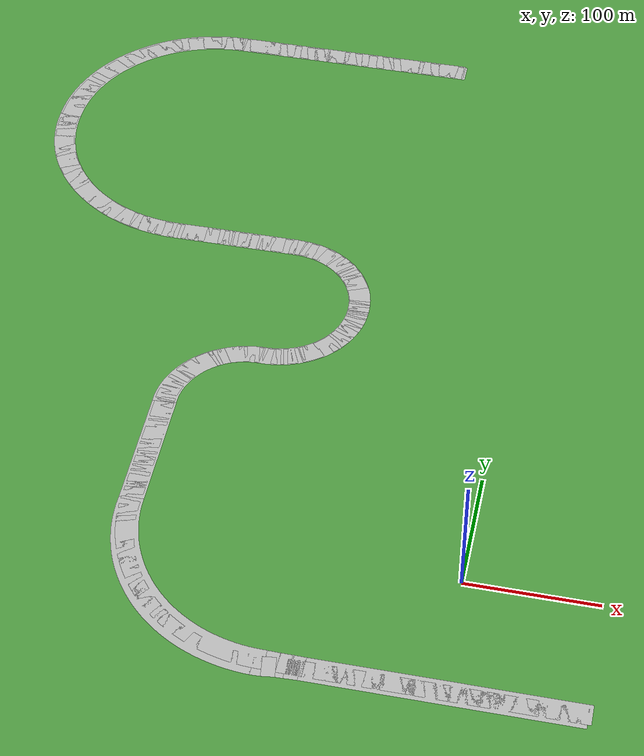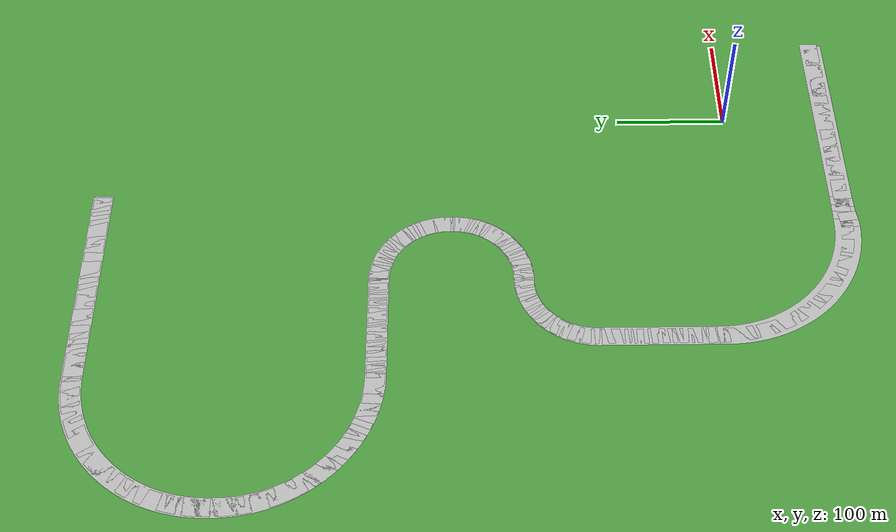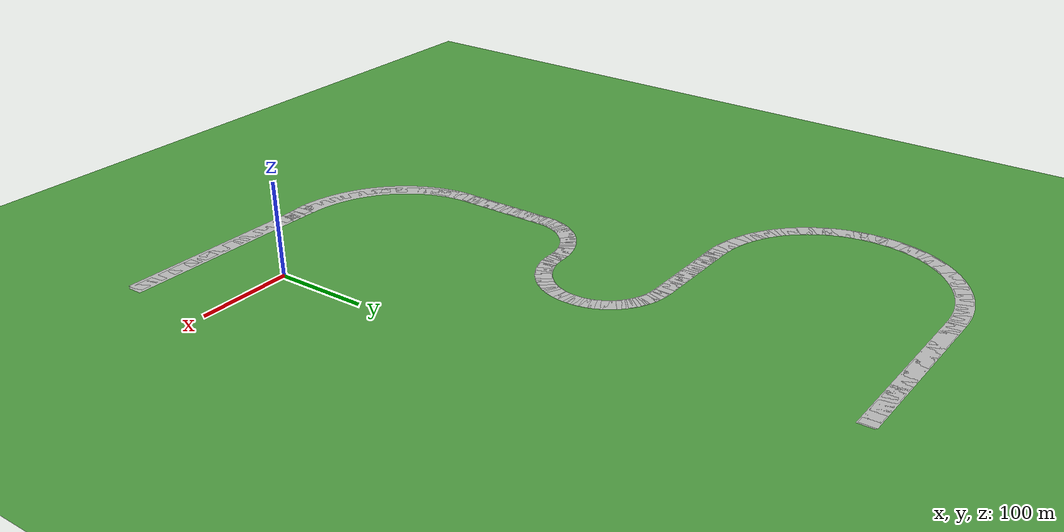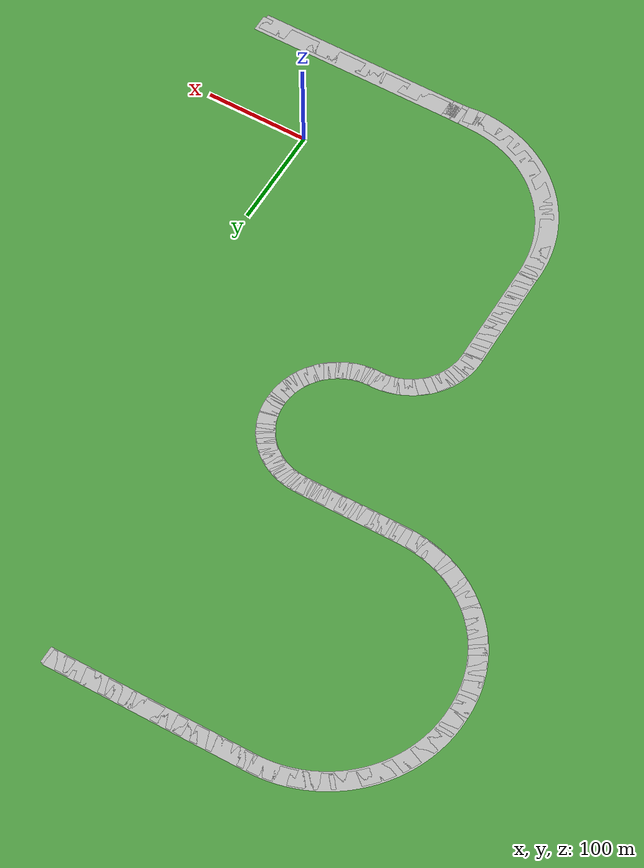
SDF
<sdf version="1.6">
 <world name="default">
  <model name="ground_plane">
   <pose>0 0 0 0 -0 3.14</pose>
   <static>1</static>
   <link name="link">
    <collision name="collision">
     <geometry><plane><normal>0 0 1</normal><size>100 100</size></plane></geometry>
     <surface><friction><ode><mu>100</mu><mu2>50</mu2></ode></friction></surface>
    </collision>
    <visual name="visual">
     <cast_shadows>0</cast_shadows>
     <geometry><plane><normal>0 0 1</normal><size>10000 10000</size></plane></geometry>
     <material>
      <script><uri>file://media/materials/scripts/ds_sim.material</uri><name>DSSim/GrassBackground</name></script>
     </material>
    </visual>
   </link>
  </model>
  <model name="straight200">
   <link name="link_0">
    <inertial>
     <mass>1</mass>
     <inertia>
      <ixx>0.166667</ixx>
      <ixy>0</ixy>
      <ixz>0</ixz>
      <iyy>0.166667</iyy>
      <iyz>0</iyz>
      <izz>0.166667</izz>
     </inertia>
    </inertial>
    <visual name="visual">
     <geometry><mesh><uri>/home/aws/Desktop/straight200.dae</uri><scale>1 1 1</scale></mesh></geometry>
    </visual>
    <collision name="collision">
     <geometry><mesh><uri>/home/aws/Desktop/straight200.dae</uri><scale>1 1 1</scale></mesh></geometry>
     <surface>
      <friction>
       <ode><mu>1</mu><mu2>1</mu2><fdir1>0 0 0</fdir1><slip1>0</slip1><slip2>0</slip2></ode>
       <torsional>
        <coefficient>1</coefficient>
        <patch_radius>0</patch_radius>
        <surface_radius>0</surface_radius>
        <use_patch_radius>1</use_patch_radius>
        <ode><slip>0</slip></ode>
       </torsional>
      </friction>
      <bounce><restitution_coefficient>0</restitution_coefficient><threshold>1e+06</threshold></bounce>
      <contact>
       <collide_without_contact>0</collide_without_contact>
       <collide_without_contact_bitmask>1</collide_without_contact_bitmask>
       <collide_bitmask>1</collide_bitmask>
       <ode>
        <soft_cfm>0</soft_cfm>
        <soft_erp>0.2</soft_erp>
        <kp>1e+13</kp>
        <kd>1</kd>
        <max_vel>0.01</max_vel>
        <min_depth>0</min_depth>
       </ode>
       <bullet>
        <split_impulse>1</split_impulse>
        <split_impulse_penetration_threshold>-0.01</split_impulse_penetration_threshold>
        <soft_cfm>0</soft_cfm>
        <soft_erp>0.2</soft_erp>
        <kp>1e+13</kp>
        <kd>1</kd>
       </bullet>
      </contact>
     </surface>
    </collision>
   </link>
   <static>1</static>
   <pose>-94.9967 -95.5714 0.05 0 -0 0</pose>
  </model>
  <model name="straight200_1">
   <link name="link_0">
    <inertial>
     <mass>1</mass>
     <inertia>
      <ixx>0.166667</ixx>
      <ixy>0</ixy>
      <ixz>0</ixz>
      <iyy>0.166667</iyy>
      <iyz>0</iyz>
      <izz>0.166667</izz>
     </inertia>
    </inertial>
    <visual name="visual">
     <geometry><mesh><uri>/home/aws/Desktop/straight200.dae</uri><scale>1 1 1</scale></mesh></geometry>
    </visual>
    <collision name="collision">
     <geometry><mesh><uri>/home/aws/Desktop/straight200.dae</uri><scale>1 1 1</scale></mesh></geometry>
     <surface>
      <friction>
       <ode><mu>1</mu><mu2>1</mu2><fdir1>0 0 0</fdir1><slip1>0</slip1><slip2>0</slip2></ode>
       <torsional>
        <coefficient>1</coefficient>
        <patch_radius>0</patch_radius>
        <surface_radius>0</surface_radius>
        <use_patch_radius>1</use_patch_radius>
        <ode><slip>0</slip></ode>
       </torsional>
      </friction>
      <bounce><restitution_coefficient>0</restitution_coefficient><threshold>1e+06</threshold></bounce>
      <contact>
       <collide_without_contact>0</collide_without_contact>
       <collide_without_contact_bitmask>1</collide_without_contact_bitmask>
       <collide_bitmask>1</collide_bitmask>
       <ode>
        <soft_cfm>0</soft_cfm>
        <soft_erp>0.2</soft_erp>
        <kp>1e+13</kp>
        <kd>1</kd>
        <max_vel>0.01</max_vel>
        <min_depth>0</min_depth>
       </ode>
       <bullet>
        <split_impulse>1</split_impulse>
        <split_impulse_penetration_threshold>-0.01</split_impulse_penetration_threshold>
        <soft_cfm>0</soft_cfm>
        <soft_erp>0.2</soft_erp>
        <kp>1e+13</kp>
        <kd>1</kd>
       </bullet>
      </contact>
     </surface>
    </collision>
   </link>
   <static>1</static>
   <pose>-88.5359 574.77 0.05 0 -0 3.14</pose>
  </model>
  <model name="curve200_L_2">
   <static>1</static>
   <link name="link">
    <inertial>
     <mass>1</mass>
     <inertia><ixx>1</ixx><iyy>1</iyy><izz>1</izz><ixy>0</ixy><ixz>0</ixz><iyz>0</iyz></inertia>
    </inertial>
    <collision name="collision">
     <geometry><mesh><uri>/home/aws/Desktop/curve200_L.dae</uri></mesh></geometry>
    </collision>
    <visual name="visual"><geometry><mesh><uri>/home/aws/Desktop/curve200_L.dae</uri></mesh></geometry></visual>
   </link>
   <pose>-288.013 576.432 0.05 0 -0 3.14</pose>
  </model>
  <model name="curve200_L_3">
   <static>1</static>
   <link name="link">
    <inertial>
     <mass>1</mass>
     <inertia><ixx>1</ixx><iyy>1</iyy><izz>1</izz><ixy>0</ixy><ixz>0</ixz><iyz>0</iyz></inertia>
    </inertial>
    <collision name="collision">
     <geometry><mesh><uri>/home/aws/Desktop/curve200_L.dae</uri></mesh></geometry>
    </collision>
    <visual name="visual"><geometry><mesh><uri>/home/aws/Desktop/curve200_L.dae</uri></mesh></geometry></visual>
   </link>
   <pose>-415.91 447.969 0.05 0 0 -1.57</pose>
  </model>
  <model name="straight100_4">
   <link name="link_0">
    <inertial>
     <mass>1</mass>
     <inertia>
      <ixx>0.166667</ixx>
      <ixy>0</ixy>
      <ixz>0</ixz>
      <iyy>0.166667</iyy>
      <iyz>0</iyz>
      <izz>0.166667</izz>
     </inertia>
    </inertial>
    <visual name="visual">
     <geometry><mesh><uri>/home/aws/Desktop/straight100.dae</uri><scale>1 1 1</scale></mesh></geometry>
    </visual>
    <collision name="collision">
     <geometry><mesh><uri>/home/aws/Desktop/straight100.dae</uri><scale>1 1 1</scale></mesh></geometry>
     <surface>
      <friction>
       <ode><mu>1</mu><mu2>1</mu2><fdir1>0 0 0</fdir1><slip1>0</slip1><slip2>0</slip2></ode>
       <torsional>
        <coefficient>1</coefficient>
        <patch_radius>0</patch_radius>
        <surface_radius>0</surface_radius>
        <use_patch_radius>1</use_patch_radius>
        <ode><slip>0</slip></ode>
       </torsional>
      </friction>
      <bounce><restitution_coefficient>0</restitution_coefficient><threshold>1e+06</threshold></bounce>
      <contact>
       <collide_without_contact>0</collide_without_contact>
       <collide_without_contact_bitmask>1</collide_without_contact_bitmask>
       <collide_bitmask>1</collide_bitmask>
       <ode>
        <soft_cfm>0</soft_cfm>
        <soft_erp>0.2</soft_erp>
        <kp>1e+13</kp>
        <kd>1</kd>
        <max_vel>0.01</max_vel>
        <min_depth>0</min_depth>
       </ode>
       <bullet>
        <split_impulse>1</split_impulse>
        <split_impulse_penetration_threshold>-0.01</split_impulse_penetration_threshold>
        <soft_cfm>0</soft_cfm>
        <soft_erp>0.2</soft_erp>
        <kp>1e+13</kp>
        <kd>1</kd>
       </bullet>
      </contact>
     </surface>
    </collision>
   </link>
   <static>1</static>
   <pose>-287.19 321.773 0.05 0 -0 0</pose>
  </model>
  <model name="curve100_R_3">
   <static>1</static>
   <link name="link">
    <inertial>
     <mass>1</mass>
     <inertia><ixx>1</ixx><iyy>1</iyy><izz>1</izz><ixy>0</ixy><ixz>0</ixz><iyz>0</iyz></inertia>
    </inertial>
    <collision name="collision">
     <geometry><mesh><uri>/home/aws/Desktop/curve100_R.dae</uri></mesh></geometry>
    </collision>
    <visual name="visual"><geometry><mesh><uri>/home/aws/Desktop/curve100_R.dae</uri></mesh></geometry></visual>
   </link>
   <pose>-187.235 321.138 0.05 0 -0 0.020116</pose>
  </model>
  <model name="curve100_R_4">
   <static>1</static>
   <link name="link">
    <inertial>
     <mass>1</mass>
     <inertia><ixx>1</ixx><iyy>1</iyy><izz>1</izz><ixy>0</ixy><ixz>0</ixz><iyz>0</iyz></inertia>
    </inertial>
    <collision name="collision">
     <geometry><mesh><uri>/home/aws/Desktop/curve100_R.dae</uri></mesh></geometry>
    </collision>
    <visual name="visual"><geometry><mesh><uri>/home/aws/Desktop/curve100_R.dae</uri></mesh></geometry></visual>
   </link>
   <pose>-124.338 258.149 0.05 0 0 -1.54825</pose>
  </model>
  <model name="curve100_L_2">
   <static>1</static>
   <link name="link">
    <inertial>
     <mass>1</mass>
     <inertia><ixx>1</ixx><iyy>1</iyy><izz>1</izz><ixy>0</ixy><ixz>0</ixz><iyz>0</iyz></inertia>
    </inertial>
    <collision name="collision">
     <geometry><mesh><uri>/home/aws/Desktop/curve100_L.dae</uri></mesh></geometry>
    </collision>
    <visual name="visual"><geometry><mesh><uri>/home/aws/Desktop/curve100_L.dae</uri></mesh></geometry></visual>
   </link>
   <pose>-186.669 195.084 0.05 0 -0 3.13696</pose>
  </model>
  <model name="straight100_6">
   <link name="link_0">
    <inertial>
     <mass>1</mass>
     <inertia>
      <ixx>0.166667</ixx>
      <ixy>0</ixy>
      <ixz>0</ixz>
      <iyy>0.166667</iyy>
      <iyz>0</iyz>
      <izz>0.166667</izz>
     </inertia>
    </inertial>
    <visual name="visual">
     <geometry><mesh><uri>/home/aws/Desktop/straight100.dae</uri><scale>1 1 1</scale></mesh></geometry>
    </visual>
    <collision name="collision">
     <geometry><mesh><uri>/home/aws/Desktop/straight100.dae</uri><scale>1 1 1</scale></mesh></geometry>
     <surface>
      <friction>
       <ode><mu>1</mu><mu2>1</mu2><fdir1>0 0 0</fdir1><slip1>0</slip1><slip2>0</slip2></ode>
       <torsional>
        <coefficient>1</coefficient>
        <patch_radius>0</patch_radius>
        <surface_radius>0</surface_radius>
        <use_patch_radius>1</use_patch_radius>
        <ode><slip>0</slip></ode>
       </torsional>
      </friction>
      <bounce><restitution_coefficient>0</restitution_coefficient><threshold>1e+06</threshold></bounce>
      <contact>
       <collide_without_contact>0</collide_without_contact>
       <collide_without_contact_bitmask>1</collide_without_contact_bitmask>
       <collide_bitmask>1</collide_bitmask>
       <ode>
        <soft_cfm>0</soft_cfm>
        <soft_erp>0.2</soft_erp>
        <kp>1e+13</kp>
        <kd>1</kd>
        <max_vel>0.01</max_vel>
        <min_depth>0</min_depth>
       </ode>
       <bullet>
        <split_impulse>1</split_impulse>
        <split_impulse_penetration_threshold>-0.01</split_impulse_penetration_threshold>
        <soft_cfm>0</soft_cfm>
        <soft_erp>0.2</soft_erp>
        <kp>1e+13</kp>
        <kd>1</kd>
       </bullet>
      </contact>
     </surface>
    </collision>
   </link>
   <static>1</static>
   <pose>-249.691 131.106 0.05 0 0 -1.57</pose>
  </model>
  <model name="curve200_L_4">
   <static>1</static>
   <link name="link">
    <inertial>
     <mass>1</mass>
     <inertia><ixx>1</ixx><iyy>1</iyy><izz>1</izz><ixy>0</ixy><ixz>0</ixz><iyz>0</iyz></inertia>
    </inertial>
    <collision name="collision">
     <geometry><mesh><uri>/home/aws/Desktop/curve200_L.dae</uri></mesh></geometry>
    </collision>
    <visual name="visual"><geometry><mesh><uri>/home/aws/Desktop/curve200_L.dae</uri></mesh></geometry></visual>
   </link>
   <pose>-250.998 31.1021 0.05 0 0 -1.57</pose>
  </model>
  <model name="connecter_10m_with_lines">
   <link name="link_1">
    <inertial>
     <mass>1</mass>
     <inertia>
      <ixx>0.166667</ixx>
      <ixy>0</ixy>
      <ixz>0</ixz>
      <iyy>0.166667</iyy>
      <iyz>0</iyz>
      <izz>0.166667</izz>
     </inertia>
    </inertial>
    <visual name="visual">
     <geometry>
      <mesh><uri>/home/aws/Desktop/connecter_10m_with_lines.dae</uri><scale>1 1 1</scale></mesh>
     </geometry>
    </visual>
    <collision name="collision">
     <geometry>
      <mesh><uri>/home/aws/Desktop/connecter_10m_with_lines.dae</uri><scale>1 1 1</scale></mesh>
     </geometry>
     <surface>
      <friction>
       <ode><mu>1</mu><mu2>1</mu2><fdir1>0 0 0</fdir1><slip1>0</slip1><slip2>0</slip2></ode>
       <torsional>
        <coefficient>1</coefficient>
        <patch_radius>0</patch_radius>
        <surface_radius>0</surface_radius>
        <use_patch_radius>1</use_patch_radius>
        <ode><slip>0</slip></ode>
       </torsional>
      </friction>
      <bounce><restitution_coefficient>0</restitution_coefficient><threshold>1e+06</threshold></bounce>
      <contact>
       <collide_without_contact>0</collide_without_contact>
       <collide_without_contact_bitmask>1</collide_without_contact_bitmask>
       <collide_bitmask>1</collide_bitmask>
       <ode>
        <soft_cfm>0</soft_cfm>
        <soft_erp>0.2</soft_erp>
        <kp>1e+13</kp>
        <kd>1</kd>
        <max_vel>0.01</max_vel>
        <min_depth>0</min_depth>
       </ode>
       <bullet>
        <split_impulse>1</split_impulse>
        <split_impulse_penetration_threshold>-0.01</split_impulse_penetration_threshold>
        <soft_cfm>0</soft_cfm>
        <soft_erp>0.2</soft_erp>
        <kp>1e+13</kp>
        <kd>1</kd>
       </bullet>
      </contact>
     </surface>
    </collision>
   </link>
   <static>1</static>
   <pose>-104.691 -95.4061 0.05 0 0 -0.020654</pose>
  </model>
  <model name="connecter_10m_with_lines_0">
   <link name="link_1">
    <inertial>
     <mass>1</mass>
     <inertia>
      <ixx>0.166667</ixx>
      <ixy>0</ixy>
      <ixz>0</ixz>
      <iyy>0.166667</iyy>
      <iyz>0</iyz>
      <izz>0.166667</izz>
     </inertia>
    </inertial>
    <visual name="visual">
     <geometry>
      <mesh><uri>/home/aws/Desktop/connecter_10m_with_lines.dae</uri><scale>1 1 1</scale></mesh>
     </geometry>
    </visual>
    <collision name="collision">
     <geometry>
      <mesh><uri>/home/aws/Desktop/connecter_10m_with_lines.dae</uri><scale>1 1 1</scale></mesh>
     </geometry>
     <surface>
      <friction>
       <ode><mu>1</mu><mu2>1</mu2><fdir1>0 0 0</fdir1><slip1>0</slip1><slip2>0</slip2></ode>
       <torsional>
        <coefficient>1</coefficient>
        <patch_radius>0</patch_radius>
        <surface_radius>0</surface_radius>
        <use_patch_radius>1</use_patch_radius>
        <ode><slip>0</slip></ode>
       </torsional>
      </friction>
      <bounce><restitution_coefficient>0</restitution_coefficient><threshold>1e+06</threshold></bounce>
      <contact>
       <collide_without_contact>0</collide_without_contact>
       <collide_without_contact_bitmask>1</collide_without_contact_bitmask>
       <collide_bitmask>1</collide_bitmask>
       <ode>
        <soft_cfm>0</soft_cfm>
        <soft_erp>0.2</soft_erp>
        <kp>1e+13</kp>
        <kd>1</kd>
        <max_vel>0.01</max_vel>
        <min_depth>0</min_depth>
       </ode>
       <bullet>
        <split_impulse>1</split_impulse>
        <split_impulse_penetration_threshold>-0.01</split_impulse_penetration_threshold>
        <soft_cfm>0</soft_cfm>
        <soft_erp>0.2</soft_erp>
        <kp>1e+13</kp>
        <kd>1</kd>
       </bullet>
      </contact>
     </surface>
    </collision>
   </link>
   <static>1</static>
   <pose>-113.247 -95.3718 0.05 0 0 -0.007108</pose>
  </model>
  <model name="connecter_10m_without_lines">
   <link name="link_0">
    <inertial>
     <mass>1</mass>
     <inertia>
      <ixx>0.166667</ixx>
      <ixy>0</ixy>
      <ixz>0</ixz>
      <iyy>0.166667</iyy>
      <iyz>0</iyz>
      <izz>0.166667</izz>
     </inertia>
    </inertial>
    <visual name="visual">
     <geometry>
      <mesh><uri>/home/aws/Desktop/connecter_10m_without_lines.dae</uri><scale>1 1 1</scale></mesh>
     </geometry>
    </visual>
    <collision name="collision">
     <geometry>
      <mesh><uri>/home/aws/Desktop/connecter_10m_without_lines.dae</uri><scale>1 1 1</scale></mesh>
     </geometry>
     <surface>
      <friction>
       <ode><mu>1</mu><mu2>1</mu2><fdir1>0 0 0</fdir1><slip1>0</slip1><slip2>0</slip2></ode>
       <torsional>
        <coefficient>1</coefficient>
        <patch_radius>0</patch_radius>
        <surface_radius>0</surface_radius>
        <use_patch_radius>1</use_patch_radius>
        <ode><slip>0</slip></ode>
       </torsional>
      </friction>
      <bounce><restitution_coefficient>0</restitution_coefficient><threshold>1e+06</threshold></bounce>
      <contact>
       <collide_without_contact>0</collide_without_contact>
       <collide_without_contact_bitmask>1</collide_without_contact_bitmask>
       <collide_bitmask>1</collide_bitmask>
       <ode>
        <soft_cfm>0</soft_cfm>
        <soft_erp>0.2</soft_erp>
        <kp>1e+13</kp>
        <kd>1</kd>
        <max_vel>0.01</max_vel>
        <min_depth>0</min_depth>
       </ode>
       <bullet>
        <split_impulse>1</split_impulse>
        <split_impulse_penetration_threshold>-0.01</split_impulse_penetration_threshold>
        <soft_cfm>0</soft_cfm>
        <soft_erp>0.2</soft_erp>
        <kp>1e+13</kp>
        <kd>1</kd>
       </bullet>
      </contact>
     </surface>
    </collision>
   </link>
   <static>1</static>
   <pose>-122.851 -95.1236 0.05 0 0 -0.030598</pose>
  </model>
  <model name="straight200_2">
   <link name="link_0">
    <inertial>
     <mass>1</mass>
     <inertia>
      <ixx>0.166667</ixx>
      <ixy>0</ixy>
      <ixz>0</ixz>
      <iyy>0.166667</iyy>
      <iyz>0</iyz>
      <izz>0.166667</izz>
     </inertia>
    </inertial>
    <visual name="visual">
     <geometry>
      <mesh>
       <uri>/home/aws/oscar/catkin_ws/src/fusion/aws_models/blender_files/straight200.dae</uri>
       <scale>1 1 1</scale>
      </mesh>
     </geometry>
    </visual>
    <collision name="collision">
     <geometry>
      <mesh>
       <uri>/home/aws/oscar/catkin_ws/src/fusion/aws_models/blender_files/straight200.dae</uri>
       <scale>1 1 1</scale>
      </mesh>
     </geometry>
     <surface>
      <friction>
       <ode><mu>1</mu><mu2>1</mu2><fdir1>0 0 0</fdir1><slip1>0</slip1><slip2>0</slip2></ode>
       <torsional>
        <coefficient>1</coefficient>
        <patch_radius>0</patch_radius>
        <surface_radius>0</surface_radius>
        <use_patch_radius>1</use_patch_radius>
        <ode><slip>0</slip></ode>
       </torsional>
      </friction>
      <bounce><restitution_coefficient>0</restitution_coefficient><threshold>1e+06</threshold></bounce>
      <contact>
       <collide_without_contact>0</collide_without_contact>
       <collide_without_contact_bitmask>1</collide_without_contact_bitmask>
       <collide_bitmask>1</collide_bitmask>
       <ode>
        <soft_cfm>0</soft_cfm>
        <soft_erp>0.2</soft_erp>
        <kp>1e+13</kp>
        <kd>1</kd>
        <max_vel>0.01</max_vel>
        <min_depth>0</min_depth>
       </ode>
       <bullet>
        <split_impulse>1</split_impulse>
        <split_impulse_penetration_threshold>-0.01</split_impulse_penetration_threshold>
        <soft_cfm>0</soft_cfm>
        <soft_erp>0.2</soft_erp>
        <kp>1e+13</kp>
        <kd>1</kd>
       </bullet>
      </contact>
     </surface>
    </collision>
   </link>
   <static>1</static>
   <pose>-97.6786 -99.0813 0.05 0 -0 0</pose>
  </model>
  <model name="straight200_4">
   <link name="link_0">
    <inertial>
     <mass>1</mass>
     <inertia>
      <ixx>0.166667</ixx>
      <ixy>0</ixy>
      <ixz>0</ixz>
      <iyy>0.166667</iyy>
      <iyz>0</iyz>
      <izz>0.166667</izz>
     </inertia>
    </inertial>
    <visual name="visual">
     <geometry>
      <mesh>
       <uri>/home/aws/oscar/catkin_ws/src/fusion/aws_models/blender_files/straight200.dae</uri>
       <scale>1 1 1</scale>
      </mesh>
     </geometry>
    </visual>
    <collision name="collision">
     <geometry>
      <mesh>
       <uri>/home/aws/oscar/catkin_ws/src/fusion/aws_models/blender_files/straight200.dae</uri>
       <scale>1 1 1</scale>
      </mesh>
     </geometry>
     <surface>
      <friction>
       <ode><mu>1</mu><mu2>1</mu2><fdir1>0 0 0</fdir1><slip1>0</slip1><slip2>0</slip2></ode>
       <torsional>
        <coefficient>1</coefficient>
        <patch_radius>0</patch_radius>
        <surface_radius>0</surface_radius>
        <use_patch_radius>1</use_patch_radius>
        <ode><slip>0</slip></ode>
       </torsional>
      </friction>
      <bounce><restitution_coefficient>0</restitution_coefficient><threshold>1e+06</threshold></bounce>
      <contact>
       <collide_without_contact>0</collide_without_contact>
       <collide_without_contact_bitmask>1</collide_without_contact_bitmask>
       <collide_bitmask>1</collide_bitmask>
       <ode>
        <soft_cfm>0</soft_cfm>
        <soft_erp>0.2</soft_erp>
        <kp>1e+13</kp>
        <kd>1</kd>
        <max_vel>0.01</max_vel>
        <min_depth>0</min_depth>
       </ode>
       <bullet>
        <split_impulse>1</split_impulse>
        <split_impulse_penetration_threshold>-0.01</split_impulse_penetration_threshold>
        <soft_cfm>0</soft_cfm>
        <soft_erp>0.2</soft_erp>
        <kp>1e+13</kp>
        <kd>1</kd>
       </bullet>
      </contact>
     </surface>
    </collision>
   </link>
   <static>1</static>
   <pose>-86.7503 573.666 0.05 0 -0 3.14</pose>
  </model>
  <model name="curve200_L_8">
   <static>1</static>
   <link name="link">
    <inertial>
     <mass>1</mass>
     <inertia><ixx>1</ixx><iyy>1</iyy><izz>1</izz><ixy>0</ixy><ixz>0</ixz><iyz>0</iyz></inertia>
    </inertial>
    <collision name="collision">
     <geometry>
      <mesh><uri>/home/aws/oscar/catkin_ws/src/fusion/aws_models/blender_files/curve200_L.dae</uri></mesh>
     </geometry>
    </collision>
    <visual name="visual">
     <geometry>
      <mesh><uri>/home/aws/oscar/catkin_ws/src/fusion/aws_models/blender_files/curve200_L.dae</uri></mesh>
     </geometry>
    </visual>
   </link>
   <pose>-286.738 575.347 0.05 0 -0 3.14</pose>
  </model>
  <model name="curve200_L_9">
   <static>1</static>
   <link name="link">
    <inertial>
     <mass>1</mass>
     <inertia><ixx>1</ixx><iyy>1</iyy><izz>1</izz><ixy>0</ixy><ixz>0</ixz><iyz>0</iyz></inertia>
    </inertial>
    <collision name="collision">
     <geometry>
      <mesh><uri>/home/aws/oscar/catkin_ws/src/fusion/aws_models/blender_files/curve200_L.dae</uri></mesh>
     </geometry>
    </collision>
    <visual name="visual">
     <geometry>
      <mesh><uri>/home/aws/oscar/catkin_ws/src/fusion/aws_models/blender_files/curve200_L.dae</uri></mesh>
     </geometry>
    </visual>
   </link>
   <pose>-414.566 446.841 0.05 0 0 -1.57</pose>
  </model>
  <model name="straight100_11">
   <link name="link_1">
    <inertial>
     <mass>1</mass>
     <inertia>
      <ixx>0.166667</ixx>
      <ixy>0</ixy>
      <ixz>0</ixz>
      <iyy>0.166667</iyy>
      <iyz>0</iyz>
      <izz>0.166667</izz>
     </inertia>
    </inertial>
    <visual name="visual">
     <geometry>
      <mesh>
       <uri>/home/aws/oscar/catkin_ws/src/fusion/aws_models/blender_files/straight100.dae</uri>
       <scale>1 1 1</scale>
      </mesh>
     </geometry>
    </visual>
    <collision name="collision">
     <geometry>
      <mesh>
       <uri>/home/aws/oscar/catkin_ws/src/fusion/aws_models/blender_files/straight100.dae</uri>
       <scale>1 1 1</scale>
      </mesh>
     </geometry>
     <surface>
      <friction>
       <ode><mu>1</mu><mu2>1</mu2><fdir1>0 0 0</fdir1><slip1>0</slip1><slip2>0</slip2></ode>
       <torsional>
        <coefficient>1</coefficient>
        <patch_radius>0</patch_radius>
        <surface_radius>0</surface_radius>
        <use_patch_radius>1</use_patch_radius>
        <ode><slip>0</slip></ode>
       </torsional>
      </friction>
      <bounce><restitution_coefficient>0</restitution_coefficient><threshold>1e+06</threshold></bounce>
      <contact>
       <collide_without_contact>0</collide_without_contact>
       <collide_without_contact_bitmask>1</collide_without_contact_bitmask>
       <collide_bitmask>1</collide_bitmask>
       <ode>
        <soft_cfm>0</soft_cfm>
        <soft_erp>0.2</soft_erp>
        <kp>1e+13</kp>
        <kd>1</kd>
        <max_vel>0.01</max_vel>
        <min_depth>0</min_depth>
       </ode>
       <bullet>
        <split_impulse>1</split_impulse>
        <split_impulse_penetration_threshold>-0.01</split_impulse_penetration_threshold>
        <soft_cfm>0</soft_cfm>
        <soft_erp>0.2</soft_erp>
        <kp>1e+13</kp>
        <kd>1</kd>
       </bullet>
      </contact>
     </surface>
    </collision>
   </link>
   <static>1</static>
   <pose>-285.797 320.72 0.05 0 -0 0</pose>
  </model>
  <model name="curve100_R_9">
   <static>1</static>
   <link name="link">
    <inertial>
     <mass>1</mass>
     <inertia><ixx>1</ixx><iyy>1</iyy><izz>1</izz><ixy>0</ixy><ixz>0</ixz><iyz>0</iyz></inertia>
    </inertial>
    <collision name="collision">
     <geometry>
      <mesh><uri>/home/aws/oscar/catkin_ws/src/fusion/aws_models/blender_files/curve100_R.dae</uri></mesh>
     </geometry>
    </collision>
    <visual name="visual">
     <geometry>
      <mesh><uri>/home/aws/oscar/catkin_ws/src/fusion/aws_models/blender_files/curve100_R.dae</uri></mesh>
     </geometry>
    </visual>
   </link>
   <pose>-185.973 320.157 0.05 0 -0 0</pose>
  </model>
  <model name="curve100_R_10">
   <static>1</static>
   <link name="link">
    <inertial>
     <mass>1</mass>
     <inertia><ixx>1</ixx><iyy>1</iyy><izz>1</izz><ixy>0</ixy><ixz>0</ixz><iyz>0</iyz></inertia>
    </inertial>
    <collision name="collision">
     <geometry>
      <mesh><uri>/home/aws/oscar/catkin_ws/src/fusion/aws_models/blender_files/curve100_R.dae</uri></mesh>
     </geometry>
    </collision>
    <visual name="visual">
     <geometry>
      <mesh><uri>/home/aws/oscar/catkin_ws/src/fusion/aws_models/blender_files/curve100_R.dae</uri></mesh>
     </geometry>
    </visual>
   </link>
   <pose>-124.402 255.947 0.05 0 0 -1.57</pose>
  </model>
  <model name="curve100_L_6">
   <static>1</static>
   <link name="link">
    <inertial>
     <mass>1</mass>
     <inertia><ixx>1</ixx><iyy>1</iyy><izz>1</izz><ixy>0</ixy><ixz>0</ixz><iyz>0</iyz></inertia>
    </inertial>
    <collision name="collision">
     <geometry>
      <mesh><uri>/home/aws/oscar/catkin_ws/src/fusion/aws_models/blender_files/curve100_L.dae</uri></mesh>
     </geometry>
    </collision>
    <visual name="visual">
     <geometry>
      <mesh><uri>/home/aws/oscar/catkin_ws/src/fusion/aws_models/blender_files/curve100_L.dae</uri></mesh>
     </geometry>
    </visual>
   </link>
   <pose>-188.503 194.31 0.05 0 -0 3.14</pose>
  </model>
  <model name="straight100_12">
   <link name="link_1">
    <inertial>
     <mass>1</mass>
     <inertia>
      <ixx>0.166667</ixx>
      <ixy>0</ixy>
      <ixz>0</ixz>
      <iyy>0.166667</iyy>
      <iyz>0</iyz>
      <izz>0.166667</izz>
     </inertia>
    </inertial>
    <visual name="visual">
     <geometry>
      <mesh>
       <uri>/home/aws/oscar/catkin_ws/src/fusion/aws_models/blender_files/straight100.dae</uri>
       <scale>1 1 1</scale>
      </mesh>
     </geometry>
    </visual>
    <collision name="collision">
     <geometry>
      <mesh>
       <uri>/home/aws/oscar/catkin_ws/src/fusion/aws_models/blender_files/straight100.dae</uri>
       <scale>1 1 1</scale>
      </mesh>
     </geometry>
     <surface>
      <friction>
       <ode><mu>1</mu><mu2>1</mu2><fdir1>0 0 0</fdir1><slip1>0</slip1><slip2>0</slip2></ode>
       <torsional>
        <coefficient>1</coefficient>
        <patch_radius>0</patch_radius>
        <surface_radius>0</surface_radius>
        <use_patch_radius>1</use_patch_radius>
        <ode><slip>0</slip></ode>
       </torsional>
      </friction>
      <bounce><restitution_coefficient>0</restitution_coefficient><threshold>1e+06</threshold></bounce>
      <contact>
       <collide_without_contact>0</collide_without_contact>
       <collide_without_contact_bitmask>1</collide_without_contact_bitmask>
       <collide_bitmask>1</collide_bitmask>
       <ode>
        <soft_cfm>0</soft_cfm>
        <soft_erp>0.2</soft_erp>
        <kp>1e+13</kp>
        <kd>1</kd>
        <max_vel>0.01</max_vel>
        <min_depth>0</min_depth>
       </ode>
       <bullet>
        <split_impulse>1</split_impulse>
        <split_impulse_penetration_threshold>-0.01</split_impulse_penetration_threshold>
        <soft_cfm>0</soft_cfm>
        <soft_erp>0.2</soft_erp>
        <kp>1e+13</kp>
        <kd>1</kd>
       </bullet>
      </contact>
     </surface>
    </collision>
   </link>
   <static>1</static>
   <pose>-251.37 130.151 0.05 0 0 -1.57</pose>
  </model>
  <model name="curve200_L_10">
   <static>1</static>
   <link name="link">
    <inertial>
     <mass>1</mass>
     <inertia><ixx>1</ixx><iyy>1</iyy><izz>1</izz><ixy>0</ixy><ixz>0</ixz><iyz>0</iyz></inertia>
    </inertial>
    <collision name="collision">
     <geometry>
      <mesh><uri>/home/aws/oscar/catkin_ws/src/fusion/aws_models/blender_files/curve200_L.dae</uri></mesh>
     </geometry>
    </collision>
    <visual name="visual">
     <geometry>
      <mesh><uri>/home/aws/oscar/catkin_ws/src/fusion/aws_models/blender_files/curve200_L.dae</uri></mesh>
     </geometry>
    </visual>
   </link>
   <pose>-252.627 31.0232 0.05 0 0 -1.61726</pose>
  </model>
  <model name="connecter_10m_with_lines_1">
   <link name="link_0">
    <inertial>
     <mass>1</mass>
     <inertia>
      <ixx>0.166667</ixx>
      <ixy>0</ixy>
      <ixz>0</ixz>
      <iyy>0.166667</iyy>
      <iyz>0</iyz>
      <izz>0.166667</izz>
     </inertia>
    </inertial>
    <visual name="visual">
     <geometry>
      <mesh>
       <uri>/home/aws/oscar/catkin_ws/src/fusion/aws_models/blender_files/connecter_10m_with_lines.dae</uri>
       <scale>1 1 1</scale>
      </mesh>
     </geometry>
    </visual>
    <collision name="collision">
     <geometry>
      <mesh>
       <uri>/home/aws/oscar/catkin_ws/src/fusion/aws_models/blender_files/connecter_10m_with_lines.dae</uri>
       <scale>1 1 1</scale>
      </mesh>
     </geometry>
     <surface>
      <friction>
       <ode><mu>1</mu><mu2>1</mu2><fdir1>0 0 0</fdir1><slip1>0</slip1><slip2>0</slip2></ode>
       <torsional>
        <coefficient>1</coefficient>
        <patch_radius>0</patch_radius>
        <surface_radius>0</surface_radius>
        <use_patch_radius>1</use_patch_radius>
        <ode><slip>0</slip></ode>
       </torsional>
      </friction>
      <bounce><restitution_coefficient>0</restitution_coefficient><threshold>1e+06</threshold></bounce>
      <contact>
       <collide_without_contact>0</collide_without_contact>
       <collide_without_contact_bitmask>1</collide_without_contact_bitmask>
       <collide_bitmask>1</collide_bitmask>
       <ode>
        <soft_cfm>0</soft_cfm>
        <soft_erp>0.2</soft_erp>
        <kp>1e+13</kp>
        <kd>1</kd>
        <max_vel>0.01</max_vel>
        <min_depth>0</min_depth>
       </ode>
       <bullet>
        <split_impulse>1</split_impulse>
        <split_impulse_penetration_threshold>-0.01</split_impulse_penetration_threshold>
        <soft_cfm>0</soft_cfm>
        <soft_erp>0.2</soft_erp>
        <kp>1e+13</kp>
        <kd>1</kd>
       </bullet>
      </contact>
     </surface>
    </collision>
   </link>
   <static>1</static>
   <pose>-107.401 -99.448 0.05 0 -0 0.037634</pose>
  </model>
  <model name="connecter_10m_without_lines_0">
   <link name="link_2">
    <inertial>
     <mass>1</mass>
     <inertia>
      <ixx>0.166667</ixx>
      <ixy>0</ixy>
      <ixz>0</ixz>
      <iyy>0.166667</iyy>
      <iyz>0</iyz>
      <izz>0.166667</izz>
     </inertia>
    </inertial>
    <visual name="visual">
     <geometry>
      <mesh>
       <uri>/home/aws/oscar/catkin_ws/src/fusion/aws_models/blender_files/connecter_10m_without_lines.dae</uri>
       <scale>1 1 1</scale>
      </mesh>
     </geometry>
    </visual>
    <collision name="collision">
     <geometry>
      <mesh>
       <uri>/home/aws/oscar/catkin_ws/src/fusion/aws_models/blender_files/connecter_10m_without_lines.dae</uri>
       <scale>1 1 1</scale>
      </mesh>
     </geometry>
     <surface>
      <friction>
       <ode><mu>1</mu><mu2>1</mu2><fdir1>0 0 0</fdir1><slip1>0</slip1><slip2>0</slip2></ode>
       <torsional>
        <coefficient>1</coefficient>
        <patch_radius>0</patch_radius>
        <surface_radius>0</surface_radius>
        <use_patch_radius>1</use_patch_radius>
        <ode><slip>0</slip></ode>
       </torsional>
      </friction>
      <bounce><restitution_coefficient>0</restitution_coefficient><threshold>1e+06</threshold></bounce>
      <contact>
       <collide_without_contact>0</collide_without_contact>
       <collide_without_contact_bitmask>1</collide_without_contact_bitmask>
       <collide_bitmask>1</collide_bitmask>
       <ode>
        <soft_cfm>0</soft_cfm>
        <soft_erp>0.2</soft_erp>
        <kp>1e+13</kp>
        <kd>1</kd>
        <max_vel>0.01</max_vel>
        <min_depth>0</min_depth>
       </ode>
       <bullet>
        <split_impulse>1</split_impulse>
        <split_impulse_penetration_threshold>-0.01</split_impulse_penetration_threshold>
        <soft_cfm>0</soft_cfm>
        <soft_erp>0.2</soft_erp>
        <kp>1e+13</kp>
        <kd>1</kd>
       </bullet>
      </contact>
     </surface>
    </collision>
   </link>
   <static>1</static>
   <pose>-115.175 -99.6831 0.049 0 -0 0.031995</pose>
  </model>
  <model name="connecter_10m_without_lines_1">
   <link name="link_2">
    <inertial>
     <mass>1</mass>
     <inertia>
      <ixx>0.166667</ixx>
      <ixy>0</ixy>
      <ixz>0</ixz>
      <iyy>0.166667</iyy>
      <iyz>0</iyz>
      <izz>0.166667</izz>
     </inertia>
    </inertial>
    <visual name="visual">
     <geometry>
      <mesh>
       <uri>/home/aws/oscar/catkin_ws/src/fusion/aws_models/blender_files/connecter_10m_without_lines.dae</uri>
       <scale>1 1 1</scale>
      </mesh>
     </geometry>
    </visual>
    <collision name="collision">
     <geometry>
      <mesh>
       <uri>/home/aws/oscar/catkin_ws/src/fusion/aws_models/blender_files/connecter_10m_without_lines.dae</uri>
       <scale>1 1 1</scale>
      </mesh>
     </geometry>
     <surface>
      <friction>
       <ode><mu>1</mu><mu2>1</mu2><fdir1>0 0 0</fdir1><slip1>0</slip1><slip2>0</slip2></ode>
       <torsional>
        <coefficient>1</coefficient>
        <patch_radius>0</patch_radius>
        <surface_radius>0</surface_radius>
        <use_patch_radius>1</use_patch_radius>
        <ode><slip>0</slip></ode>
       </torsional>
      </friction>
      <bounce><restitution_coefficient>0</restitution_coefficient><threshold>1e+06</threshold></bounce>
      <contact>
       <collide_without_contact>0</collide_without_contact>
       <collide_without_contact_bitmask>1</collide_without_contact_bitmask>
       <collide_bitmask>1</collide_bitmask>
       <ode>
        <soft_cfm>0</soft_cfm>
        <soft_erp>0.2</soft_erp>
        <kp>1e+13</kp>
        <kd>1</kd>
        <max_vel>0.01</max_vel>
        <min_depth>0</min_depth>
       </ode>
       <bullet>
        <split_impulse>1</split_impulse>
        <split_impulse_penetration_threshold>-0.01</split_impulse_penetration_threshold>
        <soft_cfm>0</soft_cfm>
        <soft_erp>0.2</soft_erp>
        <kp>1e+13</kp>
        <kd>1</kd>
       </bullet>
      </contact>
     </surface>
    </collision>
   </link>
   <static>1</static>
   <pose>-130.92 -101.104 0.05 0 -0 0.038736</pose>
  </model>
  <model name="connecter_10m_with_lines_2">
   <link name="link_0">
    <inertial>
     <mass>1</mass>
     <inertia>
      <ixx>0.166667</ixx>
      <ixy>0</ixy>
      <ixz>0</ixz>
      <iyy>0.166667</iyy>
      <iyz>0</iyz>
      <izz>0.166667</izz>
     </inertia>
    </inertial>
    <visual name="visual">
     <geometry>
      <mesh>
       <uri>/home/aws/oscar/catkin_ws/src/fusion/aws_models/blender_files/connecter_10m_with_lines.dae</uri>
       <scale>1 1 1</scale>
      </mesh>
     </geometry>
    </visual>
    <collision name="collision">
     <geometry>
      <mesh>
       <uri>/home/aws/oscar/catkin_ws/src/fusion/aws_models/blender_files/connecter_10m_with_lines.dae</uri>
       <scale>1 1 1</scale>
      </mesh>
     </geometry>
     <surface>
      <friction>
       <ode><mu>1</mu><mu2>1</mu2><fdir1>0 0 0</fdir1><slip1>0</slip1><slip2>0</slip2></ode>
       <torsional>
        <coefficient>1</coefficient>
        <patch_radius>0</patch_radius>
        <surface_radius>0</surface_radius>
        <use_patch_radius>1</use_patch_radius>
        <ode><slip>0</slip></ode>
       </torsional>
      </friction>
      <bounce><restitution_coefficient>0</restitution_coefficient><threshold>1e+06</threshold></bounce>
      <contact>
       <collide_without_contact>0</collide_without_contact>
       <collide_without_contact_bitmask>1</collide_without_contact_bitmask>
       <collide_bitmask>1</collide_bitmask>
       <ode>
        <soft_cfm>0</soft_cfm>
        <soft_erp>0.2</soft_erp>
        <kp>1e+13</kp>
        <kd>1</kd>
        <max_vel>0.01</max_vel>
        <min_depth>0</min_depth>
       </ode>
       <bullet>
        <split_impulse>1</split_impulse>
        <split_impulse_penetration_threshold>-0.01</split_impulse_penetration_threshold>
        <soft_cfm>0</soft_cfm>
        <soft_erp>0.2</soft_erp>
        <kp>1e+13</kp>
        <kd>1</kd>
       </bullet>
      </contact>
     </surface>
    </collision>
   </link>
   <static>1</static>
   <pose>-123.727 -100.86 0.051 0 -0 0.125475</pose>
  </model>
 </world>
</sdf>
